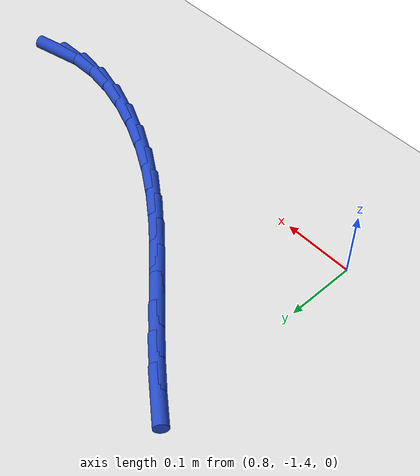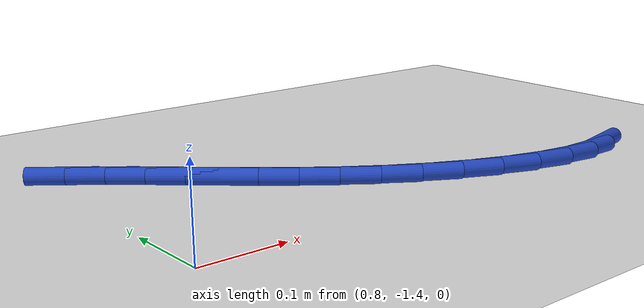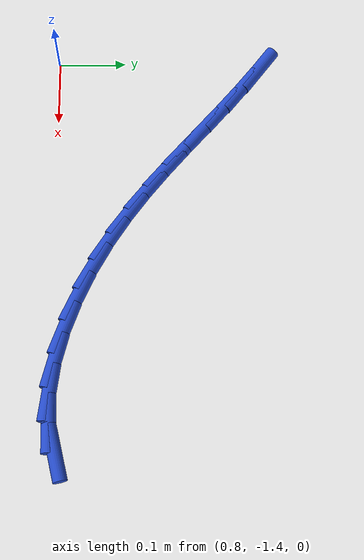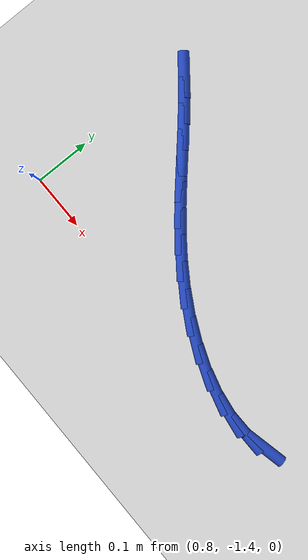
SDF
<sdf version="1.6">
 <world name="default">
  <model name="ground_plane">
   <static>1</static>
   <link name="link">
    <collision name="collision">
     <geometry><plane><normal>0 0 1</normal><size>100 100</size></plane></geometry>
     <surface><friction><ode><mu>100</mu><mu2>50</mu2></ode></friction></surface>
    </collision>
    <visual name="visual">
     <cast_shadows>0</cast_shadows>
     <geometry><plane><normal>0 0 1</normal><size>100 100</size></plane></geometry>
     <material>
      <script><uri>file://media/materials/scripts/gazebo.material</uri><name>Gazebo/WhiteGlow</name></script>
     </material>
    </visual>
   </link>
  </model>
  <model name="line">
   <link name="link_143">
    <pose>1.3941696193773363 -1.3919420451089264 0.01 0 1.57 0.22583808040836775</pose>
    <collision name="collision">
     <geometry><cylinder><radius>0.01</radius><length>0.08</length></cylinder></geometry>
    </collision>
    <visual name="visual">
     <material>
      <script><name>Gazebo/Blue</name><uri>file://media/materials/scripts/gazebo.material</uri></script>
     </material>
     <geometry><cylinder><radius>0.01</radius><length>0.08</length></cylinder></geometry>
    </visual>
   </link>
   <link name="link_144">
    <pose>1.3566430270521226 -1.40056406197004 0.01 0 1.57 0.014502251250548102</pose>
    <collision name="collision">
     <geometry><cylinder><radius>0.01</radius><length>0.08</length></cylinder></geometry>
    </collision>
    <visual name="visual">
     <material>
      <script><name>Gazebo/Blue</name><uri>file://media/materials/scripts/gazebo.material</uri></script>
     </material>
     <geometry><cylinder><radius>0.01</radius><length>0.08</length></cylinder></geometry>
    </visual>
   </link>
   <link name="link_145">
    <pose>1.3150707681447926 -1.401166995583079 0.01 0 1.57 -0.14298675424979732</pose>
    <collision name="collision">
     <geometry><cylinder><radius>0.01</radius><length>0.08</length></cylinder></geometry>
    </collision>
    <visual name="visual">
     <material>
      <script><name>Gazebo/Blue</name><uri>file://media/materials/scripts/gazebo.material</uri></script>
     </material>
     <geometry><cylinder><radius>0.01</radius><length>0.08</length></cylinder></geometry>
    </visual>
   </link>
   <link name="link_146">
    <pose>1.2708069815758163 -1.394794371214557 0.01 0 1.57 -0.2626979250218443</pose>
    <collision name="collision">
     <geometry><cylinder><radius>0.01</radius><length>0.08</length></cylinder></geometry>
    </collision>
    <visual name="visual">
     <material>
      <script><name>Gazebo/Blue</name><uri>file://media/materials/scripts/gazebo.material</uri></script>
     </material>
     <geometry><cylinder><radius>0.01</radius><length>0.08</length></cylinder></geometry>
    </visual>
   </link>
   <link name="link_147">
    <pose>1.2252672208340563 -1.382548161492448 0.01 0 1.57 -0.358630745088567</pose>
    <collision name="collision">
     <geometry><cylinder><radius>0.01</radius><length>0.08</length></cylinder></geometry>
    </collision>
    <visual name="visual">
     <material>
      <script><name>Gazebo/Blue</name><uri>file://media/materials/scripts/gazebo.material</uri></script>
     </material>
     <geometry><cylinder><radius>0.01</radius><length>0.08</length></cylinder></geometry>
    </visual>
   </link>
   <link name="link_148">
    <pose>1.1798670394083755 -1.3655303390447278 0.01 0 1.57 -0.4408597186698136</pose>
    <collision name="collision">
     <geometry><cylinder><radius>0.01</radius><length>0.08</length></cylinder></geometry>
    </collision>
    <visual name="visual">
     <material>
      <script><name>Gazebo/Blue</name><uri>file://media/materials/scripts/gazebo.material</uri></script>
     </material>
     <geometry><cylinder><radius>0.01</radius><length>0.08</length></cylinder></geometry>
    </visual>
   </link>
   <link name="link_149">
    <pose>1.1360219907876354 -1.3448428764993696 0.01 0 1.57 -0.5164432604876269</pose>
    <collision name="collision">
     <geometry><cylinder><radius>0.01</radius><length>0.08</length></cylinder></geometry>
    </collision>
    <visual name="visual">
     <material>
      <script><name>Gazebo/Blue</name><uri>file://media/materials/scripts/gazebo.material</uri></script>
     </material>
     <geometry><cylinder><radius>0.01</radius><length>0.08</length></cylinder></geometry>
    </visual>
   </link>
   <link name="link_150">
    <pose>1.0949456377505693 -1.321517723912252 0.01 0 1.57 -0.5843083285211281</pose>
    <collision name="collision">
     <geometry><cylinder><radius>0.01</radius><length>0.08</length></cylinder></geometry>
    </collision>
    <visual name="visual">
     <material>
      <script><name>Gazebo/Blue</name><uri>file://media/materials/scripts/gazebo.material</uri></script>
     </material>
     <geometry><cylinder><radius>0.01</radius><length>0.08</length></cylinder></geometry>
    </visual>
   </link>
   <link name="link_151">
    <pose>1.0565837480731177 -1.2961473345577914 0.01 0 1.57 -0.6408254386503612</pose>
    <collision name="collision">
     <geometry><cylinder><radius>0.01</radius><length>0.08</length></cylinder></geometry>
    </collision>
    <visual name="visual">
     <material>
      <script><name>Gazebo/Blue</name><uri>file://media/materials/scripts/gazebo.material</uri></script>
     </material>
     <geometry><cylinder><radius>0.01</radius><length>0.08</length></cylinder></geometry>
    </visual>
   </link>
   <link name="link_152">
    <pose>1.0203913416283774 -1.2691540378943835 0.01 0 1.57 -0.6841774151783679</pose>
    <collision name="collision">
     <geometry><cylinder><radius>0.01</radius><length>0.08</length></cylinder></geometry>
    </collision>
    <visual name="visual">
     <material>
      <script><name>Gazebo/Blue</name><uri>file://media/materials/scripts/gazebo.material</uri></script>
     </material>
     <geometry><cylinder><radius>0.01</radius><length>0.08</length></cylinder></geometry>
    </visual>
   </link>
   <link name="link_153">
    <pose>0.9858223721551421 -1.2409597937918104 0.01 0 1.57 -0.7131896457411956</pose>
    <collision name="collision">
     <geometry><cylinder><radius>0.01</radius><length>0.08</length></cylinder></geometry>
    </collision>
    <visual name="visual">
     <material>
      <script><name>Gazebo/Blue</name><uri>file://media/materials/scripts/gazebo.material</uri></script>
     </material>
     <geometry><cylinder><radius>0.01</radius><length>0.08</length></cylinder></geometry>
    </visual>
   </link>
   <link name="link_154">
    <pose>0.952330793392207 -1.2119865621198562 0.01 0 1.57 -0.7271890533698967</pose>
    <collision name="collision">
     <geometry><cylinder><radius>0.01</radius><length>0.08</length></cylinder></geometry>
    </collision>
    <visual name="visual">
     <material>
      <script><name>Gazebo/Blue</name><uri>file://media/materials/scripts/gazebo.material</uri></script>
     </material>
     <geometry><cylinder><radius>0.01</radius><length>0.08</length></cylinder></geometry>
    </visual>
   </link>
   <link name="link_155">
    <pose>0.9193705590783666 -1.1826563027483041 0.01 0 1.57 -0.7258671543843077</pose>
    <collision name="collision">
     <geometry><cylinder><radius>0.01</radius><length>0.08</length></cylinder></geometry>
    </collision>
    <visual name="visual">
     <material>
      <script><name>Gazebo/Blue</name><uri>file://media/materials/scripts/gazebo.material</uri></script>
     </material>
     <geometry><cylinder><radius>0.01</radius><length>0.08</length></cylinder></geometry>
    </visual>
   </link>
   <link name="link_156">
    <pose>0.8863956229524156 -1.1533909755469376 0.01 0 1.57 -0.7092052326440293</pose>
    <collision name="collision">
     <geometry><cylinder><radius>0.01</radius><length>0.08</length></cylinder></geometry>
    </collision>
    <visual name="visual">
     <material>
      <script><name>Gazebo/Blue</name><uri>file://media/materials/scripts/gazebo.material</uri></script>
     </material>
     <geometry><cylinder><radius>0.01</radius><length>0.08</length></cylinder></geometry>
    </visual>
   </link>
   <link name="link_157">
    <pose>0.8528600200612418 -1.1246124758907536 0.01 0 1.57 -0.6816790439032893</pose>
    <collision name="collision">
     <geometry><cylinder><radius>0.01</radius><length>0.08</length></cylinder></geometry>
    </collision>
    <visual name="visual">
     <material>
      <script><name>Gazebo/Blue</name><uri>file://media/materials/scripts/gazebo.material</uri></script>
     </material>
     <geometry><cylinder><radius>0.01</radius><length>0.08</length></cylinder></geometry>
    </visual>
   </link>
   <link name="link_158">
    <pose>0.8183675954296682 -1.0966238676555988 0.01 0 1.57 -0.6564252402420195</pose>
    <collision name="collision">
     <geometry><cylinder><radius>0.01</radius><length>0.08</length></cylinder></geometry>
    </collision>
    <visual name="visual">
     <material>
      <script><name>Gazebo/Blue</name><uri>file://media/materials/scripts/gazebo.material</uri></script>
     </material>
     <geometry><cylinder><radius>0.01</radius><length>0.08</length></cylinder></geometry>
    </visual>
   </link>
  </model>
 </world>
</sdf>
